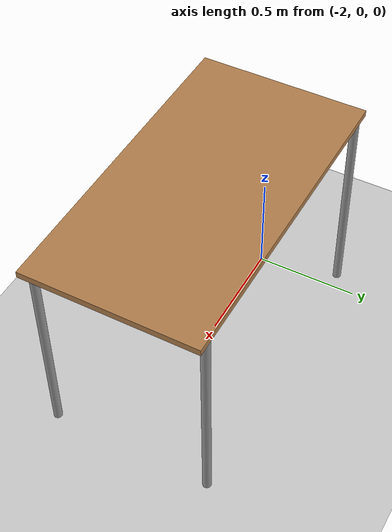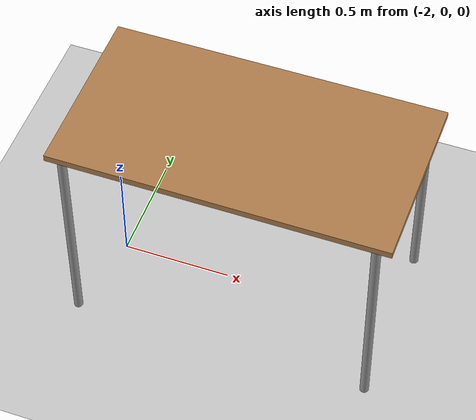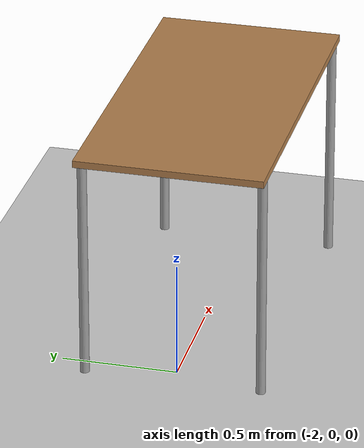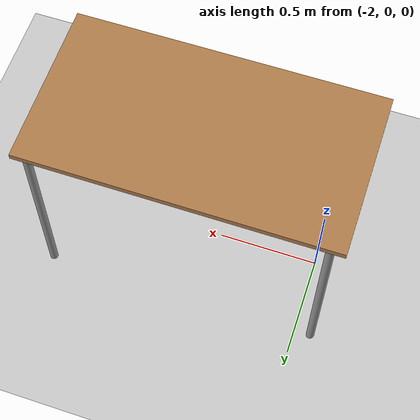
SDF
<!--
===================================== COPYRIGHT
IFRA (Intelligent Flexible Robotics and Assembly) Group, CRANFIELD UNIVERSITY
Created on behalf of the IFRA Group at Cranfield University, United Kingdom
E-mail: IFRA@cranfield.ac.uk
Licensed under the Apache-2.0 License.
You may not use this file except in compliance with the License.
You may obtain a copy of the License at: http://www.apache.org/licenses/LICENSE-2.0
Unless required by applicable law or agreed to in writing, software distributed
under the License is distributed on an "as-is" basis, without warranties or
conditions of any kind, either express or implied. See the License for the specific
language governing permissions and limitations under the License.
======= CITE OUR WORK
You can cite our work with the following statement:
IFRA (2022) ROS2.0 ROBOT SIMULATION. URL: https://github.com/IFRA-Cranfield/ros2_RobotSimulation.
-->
<sdf version="1.4">
 <world name="default">
  <include><uri>model://ground_plane</uri></include>
  <include><uri>model://sun</uri></include>
  <model name="table">
   <pose>-1.4 0 0 0 0 0</pose>
   <include><static>true</static><uri>model://table</uri></include>
  </model>
  <scene><shadows>0</shadows></scene>
  <plugin name="gazebo_ros_state" filename="libgazebo_ros_state.so">
   <ros>
    <namespace>/ros2_grasp</namespace>
    <argument>model_states:=model_states</argument>
    <argument>link_states:=link_states</argument>
   </ros>
   <update_rate>1.0</update_rate>
  </plugin>
  <plugin name="gazebo_ros_properties" filename="libgazebo_ros_properties.so">
   <ros><namespace>/ros2_grasp</namespace></ros>
  </plugin>
 </world>
</sdf>

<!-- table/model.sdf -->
<sdf version="1.5">
  <model name="table">
    <static>true</static>
    <link name="link">
      <collision name="surface">
        <pose>0 0 1.0 0 0 0</pose>
        <geometry>
          <box>
            <size>1.5 0.8 0.03</size>
          </box>
        </geometry>
        <surface>
          <friction>
            <ode>
              <mu>0.6</mu>
              <mu2>0.6</mu2>
            </ode>
          </friction>
        </surface>
      </collision>
      <visual name="visual1">
        <pose>0 0 1.0 0 0 0</pose>
        <geometry>
          <box>
            <size>1.5 0.8 0.03</size>
          </box>
        </geometry>
        <material>
          <script>
            <uri>model://media/materials/scripts/gazebo.material</uri>
            <name>Gazebo/Wood</name>
          </script>
        </material>
      </visual>
      <collision name="front_left_leg">
        <pose>0.68 0.38 0.5 0 0 0</pose>
        <geometry>
          <cylinder>
            <radius>0.02</radius>
            <length>1.0</length>
          </cylinder>
        </geometry>
      </collision>
      <visual name="front_left_leg">
        <pose>0.68 0.38 0.5 0 0 0</pose>
        <geometry>
          <cylinder>
            <radius>0.02</radius>
            <length>1.0</length>
          </cylinder>
        </geometry>
        <material>
          <script>
            <uri>model://media/materials/scripts/gazebo.material</uri>
            <name>Gazebo/Grey</name>
          </script>
        </material>
      </visual>
      <collision name="front_right_leg">
        <pose>0.68 -0.38 0.5 0 0 0</pose>
        <geometry>
          <cylinder>
            <radius>0.02</radius>
            <length>1.0</length>
          </cylinder>
        </geometry>
      </collision>
      <visual name="front_right_leg">
        <pose>0.68 -0.38 0.5 0 0 0</pose>
        <geometry>
          <cylinder>
            <radius>0.02</radius>
            <length>1.0</length>
          </cylinder>
        </geometry>
        <material>
          <script>
            <uri>model://media/materials/scripts/gazebo.material</uri>
            <name>Gazebo/Grey</name>
          </script>
        </material>
      </visual>
      <collision name="back_right_leg">
        <pose>-0.68 -0.38 0.5 0 0 0</pose>
        <geometry>
          <cylinder>
            <radius>0.02</radius>
            <length>1.0</length>
          </cylinder>
        </geometry>
      </collision>
      <visual name="back_right_leg">
        <pose>-0.68 -0.38 0.5 0 0 0</pose>
        <geometry>
          <cylinder>
            <radius>0.02</radius>
            <length>1.0</length>
          </cylinder>
        </geometry>
        <material>
          <script>
            <uri>model://media/materials/scripts/gazebo.material</uri>
            <name>Gazebo/Grey</name>
          </script>
        </material>
      </visual>
      <collision name="back_left_leg">
        <pose>-0.68 0.38 0.5 0 0 0</pose>
        <geometry>
          <cylinder>
            <radius>0.02</radius>
            <length>1.0</length>
          </cylinder>
        </geometry>
      </collision>
      <visual name="back_left_leg">
        <pose>-0.68 0.38 0.5 0 0 0</pose>
        <geometry>
          <cylinder>
            <radius>0.02</radius>
            <length>1.0</length>
          </cylinder>
        </geometry>
        <material>
          <script>
            <uri>model://media/materials/scripts/gazebo.material</uri>
            <name>Gazebo/Grey</name>
          </script>
        </material>
      </visual>
    </link>
  </model>
</sdf>
